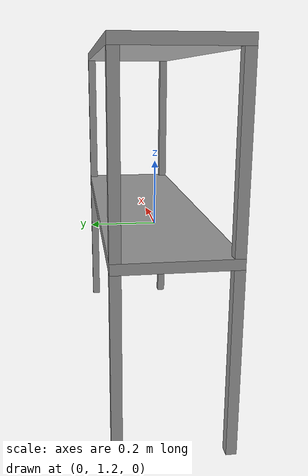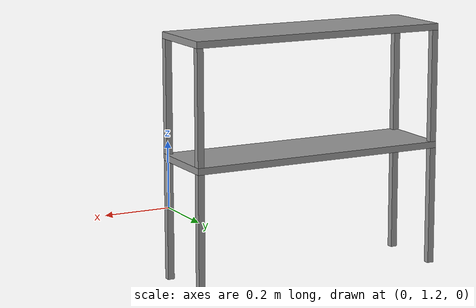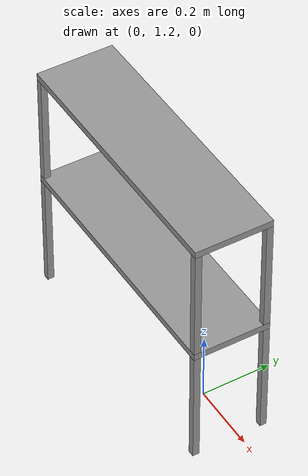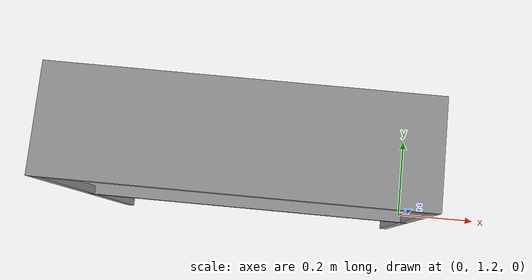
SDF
<?xml version='1.0'?>
<sdf version='1.6'>
  <model name='living_lab_shelf'>
    <link name='link_1'>
      <inertial>
        <mass>1</mass>
        <inertia>
          <ixx>0.166667</ixx>
          <ixy>0</ixy>
          <ixz>0</ixz>
          <iyy>0.166667</iyy>
          <iyz>0</iyz>
          <izz>0.166667</izz>
        </inertia>
        <pose frame=''>0 0 0 0 -0 0</pose>
      </inertial>
      <pose frame=''>-0.01 1.39 -0.042 0 -0 0</pose>
      <gravity>1</gravity>
      <self_collide>0</self_collide>
      <kinematic>0</kinematic>
      <enable_wind>0</enable_wind>
      <visual name='visual'>
        <pose frame=''>0 0 0 0 -0 0</pose>
        <geometry>
          <box>
            <size>0.02 0.02 0.36</size>
          </box>
        </geometry>
        <material>
          <lighting>1</lighting>
          <script>
            <uri>file://media/materials/scripts/gazebo.material</uri>
            <name>Gazebo/Grey</name>
          </script>
          <shader type='vertex'>
            <normal_map>__default__</normal_map>
          </shader>
          <ambient>0.3 0.3 0.3 1</ambient>
          <diffuse>0.7 0.7 0.7 1</diffuse>
          <specular>0.01 0.01 0.01 1</specular>
          <emissive>0 0 0 1</emissive>
        </material>
        <transparency>0</transparency>
        <cast_shadows>1</cast_shadows>
      </visual>
      <collision name='collision'>
        <laser_retro>0</laser_retro>
        <max_contacts>10</max_contacts>
        <pose frame=''>0 0 0 0 -0 0</pose>
        <geometry>
          <box>
            <size>0.02 0.02 0.36</size>
          </box>
        </geometry>
        <surface>
          <friction>
            <ode>
              <mu>1</mu>
              <mu2>1</mu2>
              <fdir1>0 0 0</fdir1>
              <slip1>0</slip1>
              <slip2>0</slip2>
            </ode>
            <torsional>
              <coefficient>1</coefficient>
              <patch_radius>0</patch_radius>
              <surface_radius>0</surface_radius>
              <use_patch_radius>1</use_patch_radius>
              <ode>
                <slip>0</slip>
              </ode>
            </torsional>
          </friction>
          <bounce>
            <restitution_coefficient>0</restitution_coefficient>
            <threshold>1e+06</threshold>
          </bounce>
          <contact>
            <collide_without_contact>0</collide_without_contact>
            <collide_without_contact_bitmask>1</collide_without_contact_bitmask>
            <collide_bitmask>1</collide_bitmask>
            <ode>
              <soft_cfm>0</soft_cfm>
              <soft_erp>0.2</soft_erp>
              <kp>1e+13</kp>
              <kd>1</kd>
              <max_vel>0.01</max_vel>
              <min_depth>0</min_depth>
            </ode>
            <bullet>
              <split_impulse>1</split_impulse>
              <split_impulse_penetration_threshold>-0.01</split_impulse_penetration_threshold>
              <soft_cfm>0</soft_cfm>
              <soft_erp>0.2</soft_erp>
              <kp>1e+13</kp>
              <kd>1</kd>
            </bullet>
          </contact>
        </surface>
      </collision>
    </link>
    <link name='link_1_clone'>
      <inertial>
        <mass>1</mass>
        <inertia>
          <ixx>0.166667</ixx>
          <ixy>0</ixy>
          <ixz>0</ixz>
          <iyy>0.166667</iyy>
          <iyz>0</iyz>
          <izz>0.166667</izz>
        </inertia>
        <pose frame=''>0 0 0 0 -0 0</pose>
      </inertial>
      <pose frame=''>-0.01 1.18 -0.042 0 -0 0</pose>
      <gravity>1</gravity>
      <self_collide>0</self_collide>
      <kinematic>0</kinematic>
      <enable_wind>0</enable_wind>
      <visual name='visual'>
        <pose frame=''>0 0 0 0 -0 0</pose>
        <geometry>
          <box>
            <size>0.02 0.02 0.36</size>
          </box>
        </geometry>
        <material>
          <lighting>1</lighting>
          <script>
            <uri>file://media/materials/scripts/gazebo.material</uri>
            <name>Gazebo/Grey</name>
          </script>
          <shader type='vertex'>
            <normal_map>__default__</normal_map>
          </shader>
          <ambient>0.3 0.3 0.3 1</ambient>
          <diffuse>0.7 0.7 0.7 1</diffuse>
          <specular>0.01 0.01 0.01 1</specular>
          <emissive>0 0 0 1</emissive>
        </material>
        <transparency>0</transparency>
        <cast_shadows>1</cast_shadows>
      </visual>
      <collision name='collision'>
        <laser_retro>0</laser_retro>
        <max_contacts>10</max_contacts>
        <pose frame=''>0 0 0 0 -0 0</pose>
        <geometry>
          <box>
            <size>0.02 0.02 0.36</size>
          </box>
        </geometry>
        <surface>
          <friction>
            <ode>
              <mu>1</mu>
              <mu2>1</mu2>
              <fdir1>0 0 0</fdir1>
              <slip1>0</slip1>
              <slip2>0</slip2>
            </ode>
            <torsional>
              <coefficient>1</coefficient>
              <patch_radius>0</patch_radius>
              <surface_radius>0</surface_radius>
              <use_patch_radius>1</use_patch_radius>
              <ode>
                <slip>0</slip>
              </ode>
            </torsional>
          </friction>
          <bounce>
            <restitution_coefficient>0</restitution_coefficient>
            <threshold>1e+06</threshold>
          </bounce>
          <contact>
            <collide_without_contact>0</collide_without_contact>
            <collide_without_contact_bitmask>1</collide_without_contact_bitmask>
            <collide_bitmask>1</collide_bitmask>
            <ode>
              <soft_cfm>0</soft_cfm>
              <soft_erp>0.2</soft_erp>
              <kp>1e+13</kp>
              <kd>1</kd>
              <max_vel>0.01</max_vel>
              <min_depth>0</min_depth>
            </ode>
            <bullet>
              <split_impulse>1</split_impulse>
              <split_impulse_penetration_threshold>-0.01</split_impulse_penetration_threshold>
              <soft_cfm>0</soft_cfm>
              <soft_erp>0.2</soft_erp>
              <kp>1e+13</kp>
              <kd>1</kd>
            </bullet>
          </contact>
        </surface>
      </collision>
    </link>
    <link name='link_1_clone_0'>
      <inertial>
        <mass>1</mass>
        <inertia>
          <ixx>0.166667</ixx>
          <ixy>0</ixy>
          <ixz>0</ixz>
          <iyy>0.166667</iyy>
          <iyz>0</iyz>
          <izz>0.166667</izz>
        </inertia>
        <pose frame=''>0 0 0 0 -0 0</pose>
      </inertial>
      <pose frame=''>-0.79 1.39 -0.042 0 -0 0</pose>
      <gravity>1</gravity>
      <self_collide>0</self_collide>
      <kinematic>0</kinematic>
      <enable_wind>0</enable_wind>
      <visual name='visual'>
        <pose frame=''>0 0 0 0 -0 0</pose>
        <geometry>
          <box>
            <size>0.02 0.02 0.36</size>
          </box>
        </geometry>
        <material>
          <lighting>1</lighting>
          <script>
            <uri>file://media/materials/scripts/gazebo.material</uri>
            <name>Gazebo/Grey</name>
          </script>
          <shader type='vertex'>
            <normal_map>__default__</normal_map>
          </shader>
          <ambient>0.3 0.3 0.3 1</ambient>
          <diffuse>0.7 0.7 0.7 1</diffuse>
          <specular>0.01 0.01 0.01 1</specular>
          <emissive>0 0 0 1</emissive>
        </material>
        <transparency>0</transparency>
        <cast_shadows>1</cast_shadows>
      </visual>
      <collision name='collision'>
        <laser_retro>0</laser_retro>
        <max_contacts>10</max_contacts>
        <pose frame=''>0 0 0 0 -0 0</pose>
        <geometry>
          <box>
            <size>0.02 0.02 0.36</size>
          </box>
        </geometry>
        <surface>
          <friction>
            <ode>
              <mu>1</mu>
              <mu2>1</mu2>
              <fdir1>0 0 0</fdir1>
              <slip1>0</slip1>
              <slip2>0</slip2>
            </ode>
            <torsional>
              <coefficient>1</coefficient>
              <patch_radius>0</patch_radius>
              <surface_radius>0</surface_radius>
              <use_patch_radius>1</use_patch_radius>
              <ode>
                <slip>0</slip>
              </ode>
            </torsional>
          </friction>
          <bounce>
            <restitution_coefficient>0</restitution_coefficient>
            <threshold>1e+06</threshold>
          </bounce>
          <contact>
            <collide_without_contact>0</collide_without_contact>
            <collide_without_contact_bitmask>1</collide_without_contact_bitmask>
            <collide_bitmask>1</collide_bitmask>
            <ode>
              <soft_cfm>0</soft_cfm>
              <soft_erp>0.2</soft_erp>
              <kp>1e+13</kp>
              <kd>1</kd>
              <max_vel>0.01</max_vel>
              <min_depth>0</min_depth>
            </ode>
            <bullet>
              <split_impulse>1</split_impulse>
              <split_impulse_penetration_threshold>-0.01</split_impulse_penetration_threshold>
              <soft_cfm>0</soft_cfm>
              <soft_erp>0.2</soft_erp>
              <kp>1e+13</kp>
              <kd>1</kd>
            </bullet>
          </contact>
        </surface>
      </collision>
    </link>
    <link name='link_1_clone_1'>
      <inertial>
        <mass>1</mass>
        <inertia>
          <ixx>0.166667</ixx>
          <ixy>0</ixy>
          <ixz>0</ixz>
          <iyy>0.166667</iyy>
          <iyz>0</iyz>
          <izz>0.166667</izz>
        </inertia>
        <pose frame=''>0 0 0 0 -0 0</pose>
      </inertial>
      <pose frame=''>-0.79 1.18 -0.042 0 -0 0</pose>
      <gravity>1</gravity>
      <self_collide>0</self_collide>
      <kinematic>0</kinematic>
      <enable_wind>0</enable_wind>
      <visual name='visual'>
        <pose frame=''>0 0 0 0 -0 0</pose>
        <geometry>
          <box>
            <size>0.02 0.02 0.36</size>
          </box>
        </geometry>
        <material>
          <lighting>1</lighting>
          <script>
            <uri>file://media/materials/scripts/gazebo.material</uri>
            <name>Gazebo/Grey</name>
          </script>
          <shader type='vertex'>
            <normal_map>__default__</normal_map>
          </shader>
          <ambient>0.3 0.3 0.3 1</ambient>
          <diffuse>0.7 0.7 0.7 1</diffuse>
          <specular>0.01 0.01 0.01 1</specular>
          <emissive>0 0 0 1</emissive>
        </material>
        <transparency>0</transparency>
        <cast_shadows>1</cast_shadows>
      </visual>
      <collision name='collision'>
        <laser_retro>0</laser_retro>
        <max_contacts>10</max_contacts>
        <pose frame=''>0 0 0 0 -0 0</pose>
        <geometry>
          <box>
            <size>0.02 0.02 0.36</size>
          </box>
        </geometry>
        <surface>
          <friction>
            <ode>
              <mu>1</mu>
              <mu2>1</mu2>
              <fdir1>0 0 0</fdir1>
              <slip1>0</slip1>
              <slip2>0</slip2>
            </ode>
            <torsional>
              <coefficient>1</coefficient>
              <patch_radius>0</patch_radius>
              <surface_radius>0</surface_radius>
              <use_patch_radius>1</use_patch_radius>
              <ode>
                <slip>0</slip>
              </ode>
            </torsional>
          </friction>
          <bounce>
            <restitution_coefficient>0</restitution_coefficient>
            <threshold>1e+06</threshold>
          </bounce>
          <contact>
            <collide_without_contact>0</collide_without_contact>
            <collide_without_contact_bitmask>1</collide_without_contact_bitmask>
            <collide_bitmask>1</collide_bitmask>
            <ode>
              <soft_cfm>0</soft_cfm>
              <soft_erp>0.2</soft_erp>
              <kp>1e+13</kp>
              <kd>1</kd>
              <max_vel>0.01</max_vel>
              <min_depth>0</min_depth>
            </ode>
            <bullet>
              <split_impulse>1</split_impulse>
              <split_impulse_penetration_threshold>-0.01</split_impulse_penetration_threshold>
              <soft_cfm>0</soft_cfm>
              <soft_erp>0.2</soft_erp>
              <kp>1e+13</kp>
              <kd>1</kd>
            </bullet>
          </contact>
        </surface>
      </collision>
    </link>
    <link name='link_1_clone_2'>
      <inertial>
        <mass>1</mass>
        <inertia>
          <ixx>0.166667</ixx>
          <ixy>0</ixy>
          <ixz>0</ixz>
          <iyy>0.166667</iyy>
          <iyz>0</iyz>
          <izz>0.166667</izz>
        </inertia>
        <pose frame=''>0 0 0 0 -0 0</pose>
      </inertial>
      <pose frame=''>-0.01 1.39 0.328 0 -0 0</pose>
      <gravity>1</gravity>
      <self_collide>0</self_collide>
      <kinematic>0</kinematic>
      <enable_wind>0</enable_wind>
      <visual name='visual'>
        <pose frame=''>0 0 0 0 -0 0</pose>
        <geometry>
          <box>
            <size>0.02 0.02 0.34</size>
          </box>
        </geometry>
        <material>
          <lighting>1</lighting>
          <script>
            <uri>file://media/materials/scripts/gazebo.material</uri>
            <name>Gazebo/Grey</name>
          </script>
          <shader type='vertex'>
            <normal_map>__default__</normal_map>
          </shader>
          <ambient>0.3 0.3 0.3 1</ambient>
          <diffuse>0.7 0.7 0.7 1</diffuse>
          <specular>0.01 0.01 0.01 1</specular>
          <emissive>0 0 0 1</emissive>
        </material>
        <transparency>0</transparency>
        <cast_shadows>1</cast_shadows>
      </visual>
      <collision name='collision'>
        <laser_retro>0</laser_retro>
        <max_contacts>10</max_contacts>
        <pose frame=''>0 0 0 0 -0 0</pose>
        <geometry>
          <box>
            <size>0.02 0.02 0.34</size>
          </box>
        </geometry>
        <surface>
          <friction>
            <ode>
              <mu>1</mu>
              <mu2>1</mu2>
              <fdir1>0 0 0</fdir1>
              <slip1>0</slip1>
              <slip2>0</slip2>
            </ode>
            <torsional>
              <coefficient>1</coefficient>
              <patch_radius>0</patch_radius>
              <surface_radius>0</surface_radius>
              <use_patch_radius>1</use_patch_radius>
              <ode>
                <slip>0</slip>
              </ode>
            </torsional>
          </friction>
          <bounce>
            <restitution_coefficient>0</restitution_coefficient>
            <threshold>1e+06</threshold>
          </bounce>
          <contact>
            <collide_without_contact>0</collide_without_contact>
            <collide_without_contact_bitmask>1</collide_without_contact_bitmask>
            <collide_bitmask>1</collide_bitmask>
            <ode>
              <soft_cfm>0</soft_cfm>
              <soft_erp>0.2</soft_erp>
              <kp>1e+13</kp>
              <kd>1</kd>
              <max_vel>0.01</max_vel>
              <min_depth>0</min_depth>
            </ode>
            <bullet>
              <split_impulse>1</split_impulse>
              <split_impulse_penetration_threshold>-0.01</split_impulse_penetration_threshold>
              <soft_cfm>0</soft_cfm>
              <soft_erp>0.2</soft_erp>
              <kp>1e+13</kp>
              <kd>1</kd>
            </bullet>
          </contact>
        </surface>
      </collision>
    </link>
    <link name='link_1_clone_2_clone'>
      <inertial>
        <mass>1</mass>
        <inertia>
          <ixx>0.166667</ixx>
          <ixy>0</ixy>
          <ixz>0</ixz>
          <iyy>0.166667</iyy>
          <iyz>0</iyz>
          <izz>0.166667</izz>
        </inertia>
        <pose frame=''>0 0 0 0 -0 0</pose>
      </inertial>
      <pose frame=''>-0.01 1.18 0.328 0 -0 0</pose>
      <gravity>1</gravity>
      <self_collide>0</self_collide>
      <kinematic>0</kinematic>
      <enable_wind>0</enable_wind>
      <visual name='visual'>
        <pose frame=''>0 0 0 0 -0 0</pose>
        <geometry>
          <box>
            <size>0.02 0.02 0.34</size>
          </box>
        </geometry>
        <material>
          <lighting>1</lighting>
          <script>
            <uri>file://media/materials/scripts/gazebo.material</uri>
            <name>Gazebo/Grey</name>
          </script>
          <shader type='vertex'>
            <normal_map>__default__</normal_map>
          </shader>
          <ambient>0.3 0.3 0.3 1</ambient>
          <diffuse>0.7 0.7 0.7 1</diffuse>
          <specular>0.01 0.01 0.01 1</specular>
          <emissive>0 0 0 1</emissive>
        </material>
        <transparency>0</transparency>
        <cast_shadows>1</cast_shadows>
      </visual>
      <collision name='collision'>
        <laser_retro>0</laser_retro>
        <max_contacts>10</max_contacts>
        <pose frame=''>0 0 0 0 -0 0</pose>
        <geometry>
          <box>
            <size>0.02 0.02 0.34</size>
          </box>
        </geometry>
        <surface>
          <friction>
            <ode>
              <mu>1</mu>
              <mu2>1</mu2>
              <fdir1>0 0 0</fdir1>
              <slip1>0</slip1>
              <slip2>0</slip2>
            </ode>
            <torsional>
              <coefficient>1</coefficient>
              <patch_radius>0</patch_radius>
              <surface_radius>0</surface_radius>
              <use_patch_radius>1</use_patch_radius>
              <ode>
                <slip>0</slip>
              </ode>
            </torsional>
          </friction>
          <bounce>
            <restitution_coefficient>0</restitution_coefficient>
            <threshold>1e+06</threshold>
          </bounce>
          <contact>
            <collide_without_contact>0</collide_without_contact>
            <collide_without_contact_bitmask>1</collide_without_contact_bitmask>
            <collide_bitmask>1</collide_bitmask>
            <ode>
              <soft_cfm>0</soft_cfm>
              <soft_erp>0.2</soft_erp>
              <kp>1e+13</kp>
              <kd>1</kd>
              <max_vel>0.01</max_vel>
              <min_depth>0</min_depth>
            </ode>
            <bullet>
              <split_impulse>1</split_impulse>
              <split_impulse_penetration_threshold>-0.01</split_impulse_penetration_threshold>
              <soft_cfm>0</soft_cfm>
              <soft_erp>0.2</soft_erp>
              <kp>1e+13</kp>
              <kd>1</kd>
            </bullet>
          </contact>
        </surface>
      </collision>
    </link>
    <link name='link_1_clone_2_clone_0'>
      <inertial>
        <mass>1</mass>
        <inertia>
          <ixx>0.166667</ixx>
          <ixy>0</ixy>
          <ixz>0</ixz>
          <iyy>0.166667</iyy>
          <iyz>0</iyz>
          <izz>0.166667</izz>
        </inertia>
        <pose frame=''>0 0 0 0 -0 0</pose>
      </inertial>
      <pose frame=''>-0.79 1.39 0.328 0 -0 0</pose>
      <gravity>1</gravity>
      <self_collide>0</self_collide>
      <kinematic>0</kinematic>
      <enable_wind>0</enable_wind>
      <visual name='visual'>
        <pose frame=''>0 0 0 0 -0 0</pose>
        <geometry>
          <box>
            <size>0.02 0.02 0.34</size>
          </box>
        </geometry>
        <material>
          <lighting>1</lighting>
          <script>
            <uri>file://media/materials/scripts/gazebo.material</uri>
            <name>Gazebo/Grey</name>
          </script>
          <shader type='vertex'>
            <normal_map>__default__</normal_map>
          </shader>
          <ambient>0.3 0.3 0.3 1</ambient>
          <diffuse>0.7 0.7 0.7 1</diffuse>
          <specular>0.01 0.01 0.01 1</specular>
          <emissive>0 0 0 1</emissive>
        </material>
        <transparency>0</transparency>
        <cast_shadows>1</cast_shadows>
      </visual>
      <collision name='collision'>
        <laser_retro>0</laser_retro>
        <max_contacts>10</max_contacts>
        <pose frame=''>0 0 0 0 -0 0</pose>
        <geometry>
          <box>
            <size>0.02 0.02 0.34</size>
          </box>
        </geometry>
        <surface>
          <friction>
            <ode>
              <mu>1</mu>
              <mu2>1</mu2>
              <fdir1>0 0 0</fdir1>
              <slip1>0</slip1>
              <slip2>0</slip2>
            </ode>
            <torsional>
              <coefficient>1</coefficient>
              <patch_radius>0</patch_radius>
              <surface_radius>0</surface_radius>
              <use_patch_radius>1</use_patch_radius>
              <ode>
                <slip>0</slip>
              </ode>
            </torsional>
          </friction>
          <bounce>
            <restitution_coefficient>0</restitution_coefficient>
            <threshold>1e+06</threshold>
          </bounce>
          <contact>
            <collide_without_contact>0</collide_without_contact>
            <collide_without_contact_bitmask>1</collide_without_contact_bitmask>
            <collide_bitmask>1</collide_bitmask>
            <ode>
              <soft_cfm>0</soft_cfm>
              <soft_erp>0.2</soft_erp>
              <kp>1e+13</kp>
              <kd>1</kd>
              <max_vel>0.01</max_vel>
              <min_depth>0</min_depth>
            </ode>
            <bullet>
              <split_impulse>1</split_impulse>
              <split_impulse_penetration_threshold>-0.01</split_impulse_penetration_threshold>
              <soft_cfm>0</soft_cfm>
              <soft_erp>0.2</soft_erp>
              <kp>1e+13</kp>
              <kd>1</kd>
            </bullet>
          </contact>
        </surface>
      </collision>
    </link>
    <link name='link_1_clone_2_clone_1'>
      <inertial>
        <mass>1</mass>
        <inertia>
          <ixx>0.166667</ixx>
          <ixy>0</ixy>
          <ixz>0</ixz>
          <iyy>0.166667</iyy>
          <iyz>0</iyz>
          <izz>0.166667</izz>
        </inertia>
        <pose frame=''>0 0 0 0 -0 0</pose>
      </inertial>
      <pose frame=''>-0.79 1.18 0.328 0 -0 0</pose>
      <gravity>1</gravity>
      <self_collide>0</self_collide>
      <kinematic>0</kinematic>
      <enable_wind>0</enable_wind>
      <visual name='visual'>
        <pose frame=''>0 0 0 0 -0 0</pose>
        <geometry>
          <box>
            <size>0.02 0.02 0.34</size>
          </box>
        </geometry>
        <material>
          <lighting>1</lighting>
          <script>
            <uri>file://media/materials/scripts/gazebo.material</uri>
            <name>Gazebo/Grey</name>
          </script>
          <shader type='vertex'>
            <normal_map>__default__</normal_map>
          </shader>
          <ambient>0.3 0.3 0.3 1</ambient>
          <diffuse>0.7 0.7 0.7 1</diffuse>
          <specular>0.01 0.01 0.01 1</specular>
          <emissive>0 0 0 1</emissive>
        </material>
        <transparency>0</transparency>
        <cast_shadows>1</cast_shadows>
      </visual>
      <collision name='collision'>
        <laser_retro>0</laser_retro>
        <max_contacts>10</max_contacts>
        <pose frame=''>0 0 0 0 -0 0</pose>
        <geometry>
          <box>
            <size>0.02 0.02 0.34</size>
          </box>
        </geometry>
        <surface>
          <friction>
            <ode>
              <mu>1</mu>
              <mu2>1</mu2>
              <fdir1>0 0 0</fdir1>
              <slip1>0</slip1>
              <slip2>0</slip2>
            </ode>
            <torsional>
              <coefficient>1</coefficient>
              <patch_radius>0</patch_radius>
              <surface_radius>0</surface_radius>
              <use_patch_radius>1</use_patch_radius>
              <ode>
                <slip>0</slip>
              </ode>
            </torsional>
          </friction>
          <bounce>
            <restitution_coefficient>0</restitution_coefficient>
            <threshold>1e+06</threshold>
          </bounce>
          <contact>
            <collide_without_contact>0</collide_without_contact>
            <collide_without_contact_bitmask>1</collide_without_contact_bitmask>
            <collide_bitmask>1</collide_bitmask>
            <ode>
              <soft_cfm>0</soft_cfm>
              <soft_erp>0.2</soft_erp>
              <kp>1e+13</kp>
              <kd>1</kd>
              <max_vel>0.01</max_vel>
              <min_depth>0</min_depth>
            </ode>
            <bullet>
              <split_impulse>1</split_impulse>
              <split_impulse_penetration_threshold>-0.01</split_impulse_penetration_threshold>
              <soft_cfm>0</soft_cfm>
              <soft_erp>0.2</soft_erp>
              <kp>1e+13</kp>
              <kd>1</kd>
            </bullet>
          </contact>
        </surface>
      </collision>
    </link>
    <link name='link_3'>
      <inertial>
        <mass>1</mass>
        <inertia>
          <ixx>0.166667</ixx>
          <ixy>0</ixy>
          <ixz>0</ixz>
          <iyy>0.166667</iyy>
          <iyz>0</iyz>
          <izz>0.166667</izz>
        </inertia>
        <pose frame=''>0 0 0 0 -0 0</pose>
      </inertial>
      <pose frame=''>-0.4 1.285 0.148 0 -0 0</pose>
      <gravity>1</gravity>
      <self_collide>0</self_collide>
      <kinematic>0</kinematic>
      <enable_wind>0</enable_wind>
      <visual name='visual'>
        <pose frame=''>0 0 0 0 -0 0</pose>
        <geometry>
          <box>
            <size>0.8 0.23 0.02</size>
          </box>
        </geometry>
        <material>
          <lighting>1</lighting>
          <script>
            <uri>file://media/materials/scripts/gazebo.material</uri>
            <name>Gazebo/Grey</name>
          </script>
          <shader type='vertex'>
            <normal_map>__default__</normal_map>
          </shader>
          <ambient>0.3 0.3 0.3 1</ambient>
          <diffuse>0.7 0.7 0.7 1</diffuse>
          <specular>0.01 0.01 0.01 1</specular>
          <emissive>0 0 0 1</emissive>
        </material>
        <transparency>0</transparency>
        <cast_shadows>1</cast_shadows>
      </visual>
      <collision name='collision'>
        <laser_retro>0</laser_retro>
        <max_contacts>10</max_contacts>
        <pose frame=''>0 0 0 0 -0 0</pose>
        <geometry>
          <box>
            <size>0.8 0.23 0.02</size>
          </box>
        </geometry>
        <surface>
          <friction>
            <ode>
              <mu>1</mu>
              <mu2>1</mu2>
              <fdir1>0 0 0</fdir1>
              <slip1>0</slip1>
              <slip2>0</slip2>
            </ode>
            <torsional>
              <coefficient>1</coefficient>
              <patch_radius>0</patch_radius>
              <surface_radius>0</surface_radius>
              <use_patch_radius>1</use_patch_radius>
              <ode>
                <slip>0</slip>
              </ode>
            </torsional>
          </friction>
          <bounce>
            <restitution_coefficient>0</restitution_coefficient>
            <threshold>1e+06</threshold>
          </bounce>
          <contact>
            <collide_without_contact>0</collide_without_contact>
            <collide_without_contact_bitmask>1</collide_without_contact_bitmask>
            <collide_bitmask>1</collide_bitmask>
            <ode>
              <soft_cfm>0</soft_cfm>
              <soft_erp>0.2</soft_erp>
              <kp>1e+13</kp>
              <kd>1</kd>
              <max_vel>0.01</max_vel>
              <min_depth>0</min_depth>
            </ode>
            <bullet>
              <split_impulse>1</split_impulse>
              <split_impulse_penetration_threshold>-0.01</split_impulse_penetration_threshold>
              <soft_cfm>0</soft_cfm>
              <soft_erp>0.2</soft_erp>
              <kp>1e+13</kp>
              <kd>1</kd>
            </bullet>
          </contact>
        </surface>
      </collision>
    </link>
    <link name='link_3_clone'>
      <inertial>
        <mass>1</mass>
        <inertia>
          <ixx>0.166667</ixx>
          <ixy>0</ixy>
          <ixz>0</ixz>
          <iyy>0.166667</iyy>
          <iyz>0</iyz>
          <izz>0.166667</izz>
        </inertia>
        <pose frame=''>0 0 0 0 -0 0</pose>
      </inertial>
      <pose frame=''>-0.4 1.285 0.508 0 -0 0</pose>
      <gravity>1</gravity>
      <self_collide>0</self_collide>
      <kinematic>0</kinematic>
      <enable_wind>0</enable_wind>
      <visual name='visual'>
        <pose frame=''>0 0 0 0 -0 0</pose>
        <geometry>
          <box>
            <size>0.8 0.23 0.02</size>
          </box>
        </geometry>
        <material>
          <lighting>1</lighting>
          <script>
            <uri>file://media/materials/scripts/gazebo.material</uri>
            <name>Gazebo/Grey</name>
          </script>
          <shader type='vertex'>
            <normal_map>__default__</normal_map>
          </shader>
          <ambient>0.3 0.3 0.3 1</ambient>
          <diffuse>0.7 0.7 0.7 1</diffuse>
          <specular>0.01 0.01 0.01 1</specular>
          <emissive>0 0 0 1</emissive>
        </material>
        <transparency>0</transparency>
        <cast_shadows>1</cast_shadows>
      </visual>
      <collision name='collision'>
        <laser_retro>0</laser_retro>
        <max_contacts>10</max_contacts>
        <pose frame=''>0 0 0 0 -0 0</pose>
        <geometry>
          <box>
            <size>0.8 0.23 0.02</size>
          </box>
        </geometry>
        <surface>
          <friction>
            <ode>
              <mu>1</mu>
              <mu2>1</mu2>
              <fdir1>0 0 0</fdir1>
              <slip1>0</slip1>
              <slip2>0</slip2>
            </ode>
            <torsional>
              <coefficient>1</coefficient>
              <patch_radius>0</patch_radius>
              <surface_radius>0</surface_radius>
              <use_patch_radius>1</use_patch_radius>
              <ode>
                <slip>0</slip>
              </ode>
            </torsional>
          </friction>
          <bounce>
            <restitution_coefficient>0</restitution_coefficient>
            <threshold>1e+06</threshold>
          </bounce>
          <contact>
            <collide_without_contact>0</collide_without_contact>
            <collide_without_contact_bitmask>1</collide_without_contact_bitmask>
            <collide_bitmask>1</collide_bitmask>
            <ode>
              <soft_cfm>0</soft_cfm>
              <soft_erp>0.2</soft_erp>
              <kp>1e+13</kp>
              <kd>1</kd>
              <max_vel>0.01</max_vel>
              <min_depth>0</min_depth>
            </ode>
            <bullet>
              <split_impulse>1</split_impulse>
              <split_impulse_penetration_threshold>-0.01</split_impulse_penetration_threshold>
              <soft_cfm>0</soft_cfm>
              <soft_erp>0.2</soft_erp>
              <kp>1e+13</kp>
              <kd>1</kd>
            </bullet>
          </contact>
        </surface>
      </collision>
    </link>
    <static>1</static>
    <allow_auto_disable>1</allow_auto_disable>
  </model>
</sdf>
